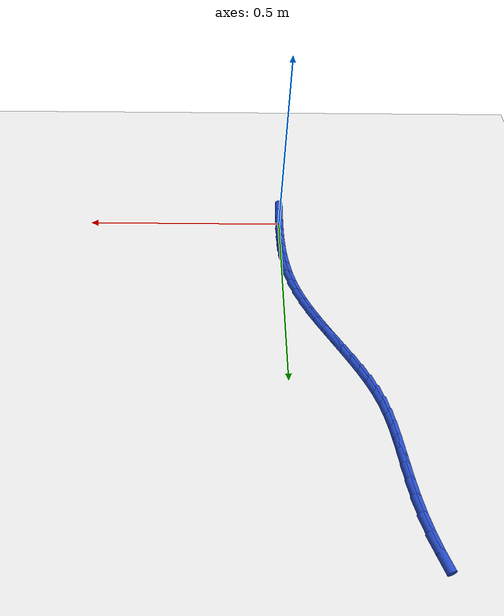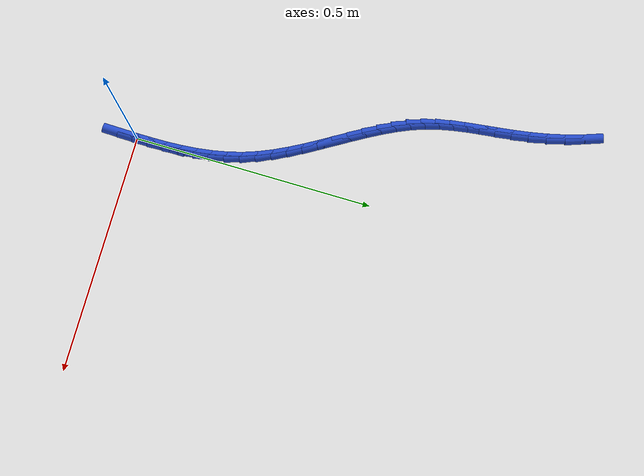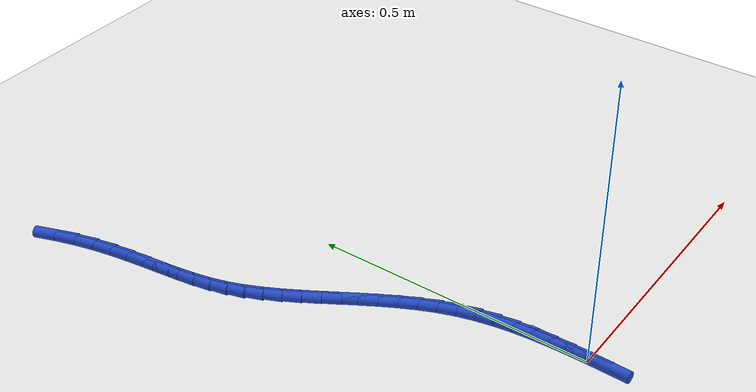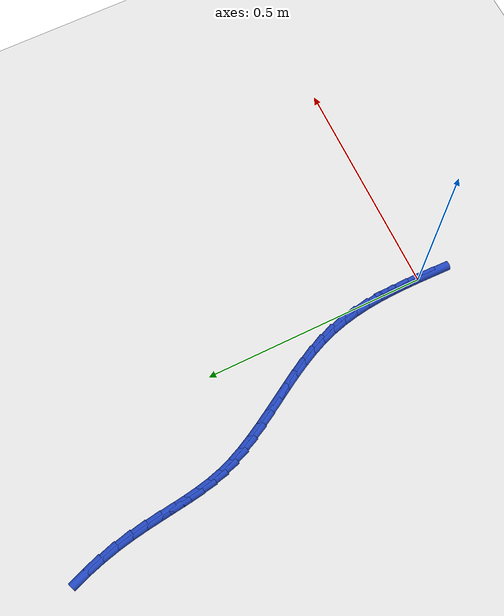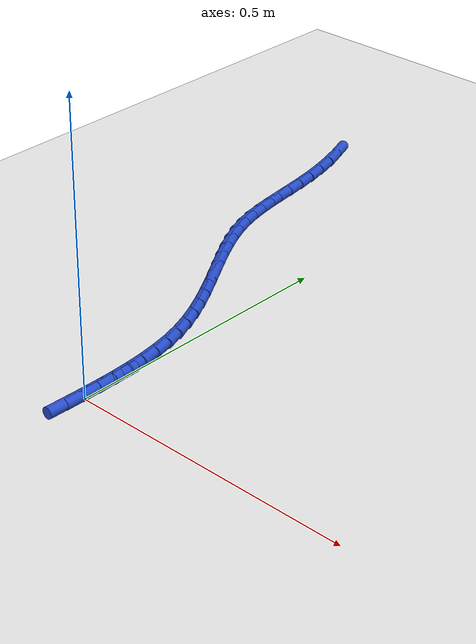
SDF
<sdf version="1.6">
 <world name="default">
  <model name="ground_plane">
   <static>1</static>
   <link name="link">
    <collision name="collision">
     <geometry><plane><normal>0 0 1</normal><size>100 100</size></plane></geometry>
     <surface><friction><ode><mu>100</mu><mu2>50</mu2></ode></friction></surface>
    </collision>
    <visual name="visual">
     <cast_shadows>0</cast_shadows>
     <geometry><plane><normal>0 0 1</normal><size>100 100</size></plane></geometry>
     <material>
      <script><uri>file://media/materials/scripts/gazebo.material</uri><name>Gazebo/WhiteGlow</name></script>
     </material>
    </visual>
   </link>
  </model>
  <model name="line">
   <link name="link_0">
    <pose>-1.235990476633475e-17 -4.85722573273506e-17 0.01 0 1.57 1.566100618739235</pose>
    <collision name="collision">
     <geometry><cylinder><radius>0.01</radius><length>0.08</length></cylinder></geometry>
    </collision>
    <visual name="visual">
     <material>
      <script><name>Gazebo/Blue</name><uri>file://media/materials/scripts/gazebo.material</uri></script>
     </material>
     <geometry><cylinder><radius>0.01</radius><length>0.08</length></cylinder></geometry>
    </visual>
   </link>
   <link name="link_1">
    <pose>0.00015219235352785057 0.03241071061593272 0.01 0 1.57 -1.5516855321531333</pose>
    <collision name="collision">
     <geometry><cylinder><radius>0.01</radius><length>0.08</length></cylinder></geometry>
    </collision>
    <visual name="visual">
     <material>
      <script><name>Gazebo/Blue</name><uri>file://media/materials/scripts/gazebo.material</uri></script>
     </material>
     <geometry><cylinder><radius>0.01</radius><length>0.08</length></cylinder></geometry>
    </visual>
   </link>
   <link name="link_2">
    <pose>-0.0004650261547788062 0.06470363078779405 0.01 0 1.57 -1.5196579744192886</pose>
    <collision name="collision">
     <geometry><cylinder><radius>0.01</radius><length>0.08</length></cylinder></geometry>
    </collision>
    <visual name="visual">
     <material>
      <script><name>Gazebo/Blue</name><uri>file://media/materials/scripts/gazebo.material</uri></script>
     </material>
     <geometry><cylinder><radius>0.01</radius><length>0.08</length></cylinder></geometry>
    </visual>
   </link>
   <link name="link_3">
    <pose>-0.002107848509032991 0.09680067660575445 0.01 0 1.57 -1.4791513278105897</pose>
    <collision name="collision">
     <geometry><cylinder><radius>0.01</radius><length>0.08</length></cylinder></geometry>
    </collision>
    <visual name="visual">
     <material>
      <script><name>Gazebo/Blue</name><uri>file://media/materials/scripts/gazebo.material</uri></script>
     </material>
     <geometry><cylinder><radius>0.01</radius><length>0.08</length></cylinder></geometry>
    </visual>
   </link>
   <link name="link_4">
    <pose>-0.005032467693347711 0.1286237641599844 0.01 0 1.57 -1.4299349653032722</pose>
    <collision name="collision">
     <geometry><cylinder><radius>0.01</radius><length>0.08</length></cylinder></geometry>
    </collision>
    <visual name="visual">
     <material>
      <script><name>Gazebo/Blue</name><uri>file://media/materials/scripts/gazebo.material</uri></script>
     </material>
     <geometry><cylinder><radius>0.01</radius><length>0.08</length></cylinder></geometry>
    </visual>
   </link>
   <link name="link_5">
    <pose>-0.009495076691835969 0.16009480954065428 0.01 0 1.57 -1.3718955185037613</pose>
    <collision name="collision">
     <geometry><cylinder><radius>0.01</radius><length>0.08</length></cylinder></geometry>
    </collision>
    <visual name="visual">
     <material>
      <script><name>Gazebo/Blue</name><uri>file://media/materials/scripts/gazebo.material</uri></script>
     </material>
     <geometry><cylinder><radius>0.01</radius><length>0.08</length></cylinder></geometry>
    </visual>
   </link>
   <link name="link_6">
    <pose>-0.015751868488610783 0.1911357288379347 0.01 0 1.57 -1.305152082181441</pose>
    <collision name="collision">
     <geometry><cylinder><radius>0.01</radius><length>0.08</length></cylinder></geometry>
    </collision>
    <visual name="visual">
     <material>
      <script><name>Gazebo/Blue</name><uri>file://media/materials/scripts/gazebo.material</uri></script>
     </material>
     <geometry><cylinder><radius>0.01</radius><length>0.08</length></cylinder></geometry>
    </visual>
   </link>
   <link name="link_7">
    <pose>-0.024059036067785148 0.22166843814199616 0.01 0 1.57 -1.231451777372342</pose>
    <collision name="collision">
     <geometry><cylinder><radius>0.01</radius><length>0.08</length></cylinder></geometry>
    </collision>
    <visual name="visual">
     <material>
      <script><name>Gazebo/Blue</name><uri>file://media/materials/scripts/gazebo.material</uri></script>
     </material>
     <geometry><cylinder><radius>0.01</radius><length>0.08</length></cylinder></geometry>
    </visual>
   </link>
   <link name="link_8">
    <pose>-0.03463335852602965 0.2516240613209322 0.01 0 1.57 -1.1643371102490998</pose>
    <collision name="collision">
     <geometry><cylinder><radius>0.01</radius><length>0.08</length></cylinder></geometry>
    </collision>
    <visual name="visual">
     <material>
      <script><name>Gazebo/Blue</name><uri>file://media/materials/scripts/gazebo.material</uri></script>
     </material>
     <geometry><cylinder><radius>0.01</radius><length>0.08</length></cylinder></geometry>
    </visual>
   </link>
   <link name="link_9">
    <pose>-0.0472894929452368 0.28102766502418547 0.01 0 1.57 -1.1112566570468299</pose>
    <collision name="collision">
     <geometry><cylinder><radius>0.01</radius><length>0.08</length></cylinder></geometry>
    </collision>
    <visual name="visual">
     <material>
      <script><name>Gazebo/Blue</name><uri>file://media/materials/scripts/gazebo.material</uri></script>
     </material>
     <geometry><cylinder><radius>0.01</radius><length>0.08</length></cylinder></geometry>
    </visual>
   </link>
   <link name="link_10">
    <pose>-0.06160701968704749 0.3099592339611886 0.01 0 1.57 -1.071769481423054</pose>
    <collision name="collision">
     <geometry><cylinder><radius>0.01</radius><length>0.08</length></cylinder></geometry>
    </collision>
    <visual name="visual">
     <material>
      <script><name>Gazebo/Blue</name><uri>file://media/materials/scripts/gazebo.material</uri></script>
     </material>
     <geometry><cylinder><radius>0.01</radius><length>0.08</length></cylinder></geometry>
    </visual>
   </link>
   <link name="link_11">
    <pose>-0.07716256321209888 0.33849944339188204 0.01 0 1.57 -1.0452904629396624</pose>
    <collision name="collision">
     <geometry><cylinder><radius>0.01</radius><length>0.08</length></cylinder></geometry>
    </collision>
    <visual name="visual">
     <material>
      <script><name>Gazebo/Blue</name><uri>file://media/materials/scripts/gazebo.material</uri></script>
     </material>
     <geometry><cylinder><radius>0.01</radius><length>0.08</length></cylinder></geometry>
    </visual>
   </link>
   <link name="link_12">
    <pose>-0.09353274798102824 0.36672896857620685 0.01 0 1.57 -1.0313821566657377</pose>
    <collision name="collision">
     <geometry><cylinder><radius>0.01</radius><length>0.08</length></cylinder></geometry>
    </collision>
    <visual name="visual">
     <material>
      <script><name>Gazebo/Blue</name><uri>file://media/materials/scripts/gazebo.material</uri></script>
     </material>
     <geometry><cylinder><radius>0.01</radius><length>0.08</length></cylinder></geometry>
    </visual>
   </link>
   <link name="link_13">
    <pose>-0.11029419845447262 0.3947284847741032 0.01 0 1.57 -1.0298692446438105</pose>
    <collision name="collision">
     <geometry><cylinder><radius>0.01</radius><length>0.08</length></cylinder></geometry>
    </collision>
    <visual name="visual">
     <material>
      <script><name>Gazebo/Blue</name><uri>file://media/materials/scripts/gazebo.material</uri></script>
     </material>
     <geometry><cylinder><radius>0.01</radius><length>0.08</length></cylinder></geometry>
    </visual>
   </link>
   <link name="link_14">
    <pose>-0.1270235390930694 0.4225786672455124 0.01 0 1.57 -1.0408984872431144</pose>
    <collision name="collision">
     <geometry><cylinder><radius>0.01</radius><length>0.08</length></cylinder></geometry>
    </collision>
    <visual name="visual">
     <material>
      <script><name>Gazebo/Blue</name><uri>file://media/materials/scripts/gazebo.material</uri></script>
     </material>
     <geometry><cylinder><radius>0.01</radius><length>0.08</length></cylinder></geometry>
    </visual>
   </link>
   <link name="link_15">
    <pose>-0.14329739435745553 0.4503601912503747 0.01 0 1.57 -1.0649596180846552</pose>
    <collision name="collision">
     <geometry><cylinder><radius>0.01</radius><length>0.08</length></cylinder></geometry>
    </collision>
    <visual name="visual">
     <material>
      <script><name>Gazebo/Blue</name><uri>file://media/materials/scripts/gazebo.material</uri></script>
     </material>
     <geometry><cylinder><radius>0.01</radius><length>0.08</length></cylinder></geometry>
    </visual>
   </link>
   <link name="link_16">
    <pose>-0.15869238870826835 0.478153732048631 0.01 0 1.57 -1.1028650255918955</pose>
    <collision name="collision">
     <geometry><cylinder><radius>0.01</radius><length>0.08</length></cylinder></geometry>
    </collision>
    <visual name="visual">
     <material>
      <script><name>Gazebo/Blue</name><uri>file://media/materials/scripts/gazebo.material</uri></script>
     </material>
     <geometry><cylinder><radius>0.01</radius><length>0.08</length></cylinder></geometry>
    </visual>
   </link>
   <link name="link_17">
    <pose>-0.17278514660614508 0.5060399649002219 0.01 0 1.57 -1.1556649412952094</pose>
    <collision name="collision">
     <geometry><cylinder><radius>0.01</radius><length>0.08</length></cylinder></geometry>
    </collision>
    <visual name="visual">
     <material>
      <script><name>Gazebo/Blue</name><uri>file://media/materials/scripts/gazebo.material</uri></script>
     </material>
     <geometry><cylinder><radius>0.01</radius><length>0.08</length></cylinder></geometry>
    </visual>
   </link>
   <link name="link_18">
    <pose>-0.18515229251172272 0.534099565065088 0.01 0 1.57 -1.2244380104600048</pose>
    <collision name="collision">
     <geometry><cylinder><radius>0.01</radius><length>0.08</length></cylinder></geometry>
    </collision>
    <visual name="visual">
     <material>
      <script><name>Gazebo/Blue</name><uri>file://media/materials/scripts/gazebo.material</uri></script>
     </material>
     <geometry><cylinder><radius>0.01</radius><length>0.08</length></cylinder></geometry>
    </visual>
   </link>
   <link name="link_19">
    <pose>-0.19537089247910183 0.5624132277088669 0.01 0 1.57 -1.3021854720569428</pose>
    <collision name="collision">
     <geometry><cylinder><radius>0.01</radius><length>0.08</length></cylinder></geometry>
    </collision>
    <visual name="visual">
     <material>
      <script><name>Gazebo/Blue</name><uri>file://media/materials/scripts/gazebo.material</uri></script>
     </material>
     <geometry><cylinder><radius>0.01</radius><length>0.08</length></cylinder></geometry>
    </visual>
   </link>
   <link name="link_20">
    <pose>-0.20325974669941613 0.5910725446404158 0.01 0 1.57 -1.3669906924949295</pose>
    <collision name="collision">
     <geometry><cylinder><radius>0.01</radius><length>0.08</length></cylinder></geometry>
    </collision>
    <visual name="visual">
     <material>
      <script><name>Gazebo/Blue</name><uri>file://media/materials/scripts/gazebo.material</uri></script>
     </material>
     <geometry><cylinder><radius>0.01</radius><length>0.08</length></cylinder></geometry>
    </visual>
   </link>
   <link name="link_21">
    <pose>-0.20927925991647964 0.6201980292598265 0.01 0 1.57 -1.4134167884275526</pose>
    <collision name="collision">
     <geometry><cylinder><radius>0.01</radius><length>0.08</length></cylinder></geometry>
    </collision>
    <visual name="visual">
     <material>
      <script><name>Gazebo/Blue</name><uri>file://media/materials/scripts/gazebo.material</uri></script>
     </material>
     <geometry><cylinder><radius>0.01</radius><length>0.08</length></cylinder></geometry>
    </visual>
   </link>
   <link name="link_22">
    <pose>-0.2139950923983609 0.6499149395676381 0.01 0 1.57 -1.4408284535988678</pose>
    <collision name="collision">
     <geometry><cylinder><radius>0.01</radius><length>0.08</length></cylinder></geometry>
    </collision>
    <visual name="visual">
     <material>
      <script><name>Gazebo/Blue</name><uri>file://media/materials/scripts/gazebo.material</uri></script>
     </material>
     <geometry><cylinder><radius>0.01</radius><length>0.08</length></cylinder></geometry>
    </visual>
   </link>
   <link name="link_23">
    <pose>-0.21797290441312867 0.68034853356439 0.01 0 1.57 -1.4497164751411604</pose>
    <collision name="collision">
     <geometry><cylinder><radius>0.01</radius><length>0.08</length></cylinder></geometry>
    </collision>
    <visual name="visual">
     <material>
      <script><name>Gazebo/Blue</name><uri>file://media/materials/scripts/gazebo.material</uri></script>
     </material>
     <geometry><cylinder><radius>0.01</radius><length>0.08</length></cylinder></geometry>
    </visual>
   </link>
   <link name="link_24">
    <pose>-0.22177835622885148 0.7116240692506212 0.01 0 1.57 -1.441301847330977</pose>
    <collision name="collision">
     <geometry><cylinder><radius>0.01</radius><length>0.08</length></cylinder></geometry>
    </collision>
    <visual name="visual">
     <material>
      <script><name>Gazebo/Blue</name><uri>file://media/materials/scripts/gazebo.material</uri></script>
     </material>
     <geometry><cylinder><radius>0.01</radius><length>0.08</length></cylinder></geometry>
    </visual>
   </link>
   <link name="link_25">
    <pose>-0.225977108113598 0.7438668046268709 0.01 0 1.57 -1.4172907986450674</pose>
    <collision name="collision">
     <geometry><cylinder><radius>0.01</radius><length>0.08</length></cylinder></geometry>
    </collision>
    <visual name="visual">
     <material>
      <script><name>Gazebo/Blue</name><uri>file://media/materials/scripts/gazebo.material</uri></script>
     </material>
     <geometry><cylinder><radius>0.01</radius><length>0.08</length></cylinder></geometry>
    </visual>
   </link>
   <link name="link_26">
    <pose>-0.2311348203354369 0.7772019976936786 0.01 0 1.57 -1.379760472157938</pose>
    <collision name="collision">
     <geometry><cylinder><radius>0.01</radius><length>0.08</length></cylinder></geometry>
    </collision>
    <visual name="visual">
     <material>
      <script><name>Gazebo/Blue</name><uri>file://media/materials/scripts/gazebo.material</uri></script>
     </material>
     <geometry><cylinder><radius>0.01</radius><length>0.08</length></cylinder></geometry>
    </visual>
   </link>
   <link name="link_27">
    <pose>-0.23781715316243676 0.8117549064515832 0.01 0 1.57 -1.3315169358083603</pose>
    <collision name="collision">
     <geometry><cylinder><radius>0.01</radius><length>0.08</length></cylinder></geometry>
    </collision>
    <visual name="visual">
     <material>
      <script><name>Gazebo/Blue</name><uri>file://media/materials/scripts/gazebo.material</uri></script>
     </material>
     <geometry><cylinder><radius>0.01</radius><length>0.08</length></cylinder></geometry>
    </visual>
   </link>
   <link name="link_28">
    <pose>-0.24656716783948168 0.8476225204404715 0.01 0 1.57 -1.2808650004285862</pose>
    <collision name="collision">
     <geometry><cylinder><radius>0.01</radius><length>0.08</length></cylinder></geometry>
    </collision>
    <visual name="visual">
     <material>
      <script><name>Gazebo/Blue</name><uri>file://media/materials/scripts/gazebo.material</uri></script>
     </material>
     <geometry><cylinder><radius>0.01</radius><length>0.08</length></cylinder></geometry>
    </visual>
   </link>
   <link name="link_29">
    <pose>-0.2575467567340899 0.8844250361404715 0.01 0 1.57 -1.231289530642241</pose>
    <collision name="collision">
     <geometry><cylinder><radius>0.01</radius><length>0.08</length></cylinder></geometry>
    </collision>
    <visual name="visual">
     <material>
      <script><name>Gazebo/Blue</name><uri>file://media/materials/scripts/gazebo.material</uri></script>
     </material>
     <geometry><cylinder><radius>0.01</radius><length>0.08</length></cylinder></geometry>
    </visual>
   </link>
   <link name="link_269">
    <pose>-0.0007338471746880897 -0.032444975380412605 0.01 0 1.57 1.5481819754765578</pose>
    <collision name="collision">
     <geometry><cylinder><radius>0.01</radius><length>0.08</length></cylinder></geometry>
    </collision>
    <visual name="visual">
     <material>
      <script><name>Gazebo/Blue</name><uri>file://media/materials/scripts/gazebo.material</uri></script>
     </material>
     <geometry><cylinder><radius>0.01</radius><length>0.08</length></cylinder></geometry>
    </visual>
   </link>
   <link name="link_270">
    <pose>-1.7564075194265172e-17 -1.1796119636642288e-16 0.01 0 1.57 1.5639879929702345</pose>
    <collision name="collision">
     <geometry><cylinder><radius>0.01</radius><length>0.08</length></cylinder></geometry>
    </collision>
    <visual name="visual">
     <material>
      <script><name>Gazebo/Blue</name><uri>file://media/materials/scripts/gazebo.material</uri></script>
     </material>
     <geometry><cylinder><radius>0.01</radius><length>0.08</length></cylinder></geometry>
    </visual>
   </link>
   <link name="link_271">
    <pose>0.00022062929696655483 0.03240526884617143 0.01 0 1.57 -1.5665129661701318</pose>
    <collision name="collision">
     <geometry><cylinder><radius>0.01</radius><length>0.08</length></cylinder></geometry>
    </collision>
    <visual name="visual">
     <material>
      <script><name>Gazebo/Blue</name><uri>file://media/materials/scripts/gazebo.material</uri></script>
     </material>
     <geometry><cylinder><radius>0.01</radius><length>0.08</length></cylinder></geometry>
    </visual>
   </link>
   <link name="link_272">
    <pose>8.246939273085039e-05 0.06466009662970101 0.01 0 1.57 1.5695208980171609</pose>
    <collision name="collision">
     <geometry><cylinder><radius>0.01</radius><length>0.08</length></cylinder></geometry>
    </collision>
    <visual name="visual">
     <material>
      <script><name>Gazebo/Blue</name><uri>file://media/materials/scripts/gazebo.material</uri></script>
     </material>
     <geometry><cylinder><radius>0.01</radius><length>0.08</length></cylinder></geometry>
    </visual>
   </link>
  </model>
 </world>
</sdf>
